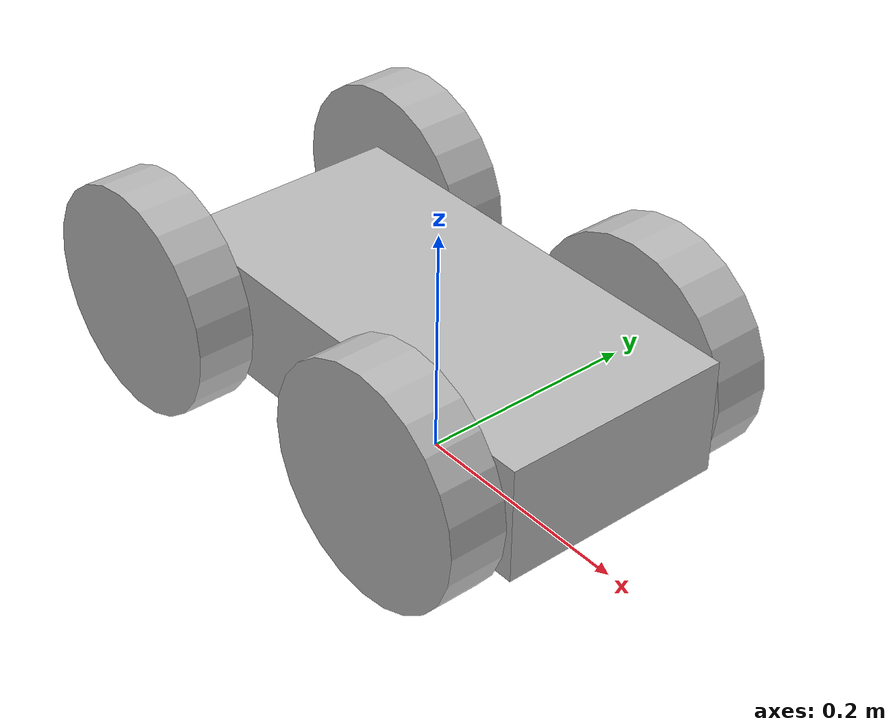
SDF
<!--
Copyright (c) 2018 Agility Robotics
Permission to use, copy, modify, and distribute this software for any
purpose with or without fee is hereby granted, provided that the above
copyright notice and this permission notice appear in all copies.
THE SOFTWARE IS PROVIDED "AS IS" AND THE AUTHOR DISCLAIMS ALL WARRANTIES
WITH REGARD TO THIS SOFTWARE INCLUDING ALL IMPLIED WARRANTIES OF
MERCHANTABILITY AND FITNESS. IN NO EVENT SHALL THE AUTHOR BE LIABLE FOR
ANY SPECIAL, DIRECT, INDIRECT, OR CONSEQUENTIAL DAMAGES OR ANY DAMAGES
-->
<?xml version="1.0" ?>

<sdf version="1.6">
  <model name="mopla">
    <plugin name="any_plugin_name" filename="librhombus_gazebo_plugin.so"/>

    <link name='chassis'>
      <pose>0 0 .1 0 0 0</pose>
      <collision name='collision'>
        <geometry>
          <box>
            <size>.4 .2 .1</size>
          </box>
        </geometry>
      </collision>

      <visual name='visual'>
        <geometry>
          <box>
            <size>.4 .2 .1</size>
          </box>
        </geometry>
      </visual>
      <inertial>
        <mass>14.0</mass>
        <inertia>
          <ixx>1</ixx>
          <ixy>0.0</ixy>
          <ixz>0.0</ixz>
          <iyy>1</iyy>
          <iyz>0.0</iyz>
          <izz>1</izz>
        </inertia>
      </inertial>

    </link>
    <link name="left_front_wheel">
      <pose>0.1 0.13 0.1 0 1.5707 1.5707</pose>
      <collision name="collision">
        <geometry>
          <cylinder>
            <radius>.1</radius>
            <length>.05</length>
          </cylinder>
        </geometry>
        <surface>
          <friction>
            <ode>
              <mu>1</mu>
              <mu2>1</mu2>
            </ode>
          </friction>
        </surface>
      </collision>
      <inertial>
        <mass>14.0</mass>
        <inertia>
          <ixx>1</ixx>
          <ixy>0.0</ixy>
          <ixz>0.0</ixz>
          <iyy>1</iyy>
          <iyz>0.0</iyz>
          <izz>1</izz>
        </inertia>
      </inertial>
      <visual name="visual">
        <geometry>
          <cylinder>
            <radius>.1</radius>
            <length>.05</length>
          </cylinder>
        </geometry>
      </visual>
    </link>

    <link name="right_front_wheel">
      <pose>0.1 -0.13 0.1 0 1.5707 1.5707</pose>
      <collision name="collision">
        <geometry>
          <cylinder>
            <radius>.1</radius>
            <length>.05</length>
          </cylinder>
        </geometry>
        <surface>
          <friction>
            <ode>
              <mu>1</mu>
              <mu2>0.5</mu2>

            </ode>
          </friction>
        </surface>
      </collision>
      <visual name="visual">
        <geometry>
          <cylinder>
            <radius>.1</radius>
            <length>.05</length>
          </cylinder>
        </geometry>
      </visual>
    </link>
    <link name="left_rear_wheel">
      <pose>-0.2 0.13 0.1 0 1.5707 1.5707</pose>
      <collision name="collision">
        <geometry>
          <cylinder>
            <radius>.1</radius>
            <length>.05</length>
          </cylinder>
        </geometry>
        <surface>
          <friction>
            <ode>
              <mu>0.5</mu>
              <mu2>0.5</mu2>

            </ode>
          </friction>
        </surface>
      </collision>
      <visual name="visual">
        <geometry>
          <cylinder>
            <radius>.1</radius>
            <length>.05</length>
          </cylinder>
        </geometry>
      </visual>
    </link>

    <link name="right_rear_wheel">
      <pose>-0.2 -0.13 0.1 0 1.5707 1.5707</pose>
      <collision name="collision">
        <geometry>
          <cylinder>
            <radius>.1</radius>
            <length>.05</length>
          </cylinder>
        </geometry>
        <surface>
          <friction>
            <ode>
              <mu>0.5</mu>
              <mu2>0.5</mu2>
              <fdir1>1 1 0</fdir1>
            </ode>
          </friction>
        </surface>
      </collision>
      <visual name="visual">
        <geometry>
          <cylinder>
            <radius>.1</radius>
            <length>.05</length>
          </cylinder>
        </geometry>
      </visual>
    </link>
    <joint type="revolute" name="left_front_wheel_hinge">
      <pose>0 0 -0.03 0 0 0</pose>
      <child>left_front_wheel</child>
      <parent>chassis</parent>
      <axis>
        <xyz>0 0 1</xyz>
      </axis>
    </joint>

    <joint type="revolute" name="right_front_wheel_hinge">
      <pose>0 0 0.03 0 0 0</pose>
      <child>right_front_wheel</child>
      <parent>chassis</parent>
      <axis>
        <xyz>0 0 1</xyz>
      </axis>
    </joint>
    <joint type="revolute" name="left_rear_wheel_hinge">
      <pose>0 0 -0.03 0 0 0</pose>
      <child>left_rear_wheel</child>
      <parent>chassis</parent>
      <axis>
        <xyz>0 0 1</xyz>
      </axis>
    </joint>

    <joint type="revolute" name="right_rear_wheel_hinge">
      <pose>0 0 0.03 0 0 0</pose>
      <child>right_rear_wheel</child>
      <parent>chassis</parent>
      <axis>
        <xyz>0 0 1</xyz>
      </axis>
    </joint>

</model>
</sdf>
